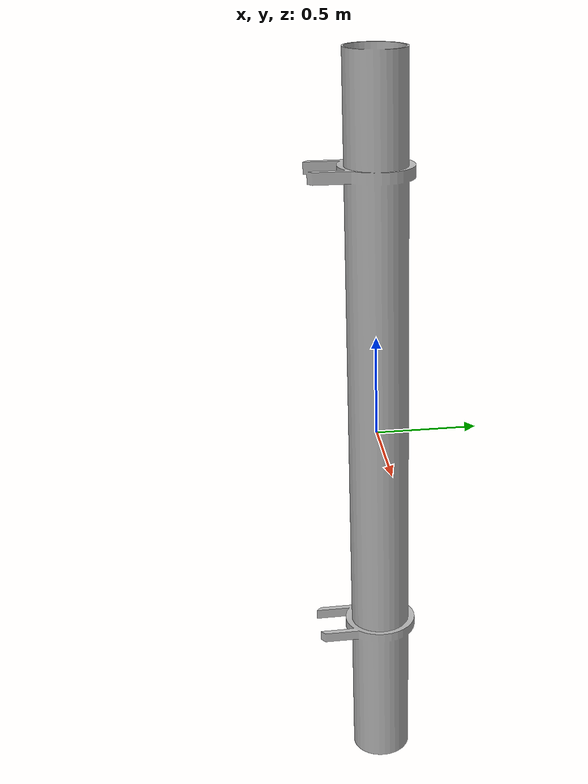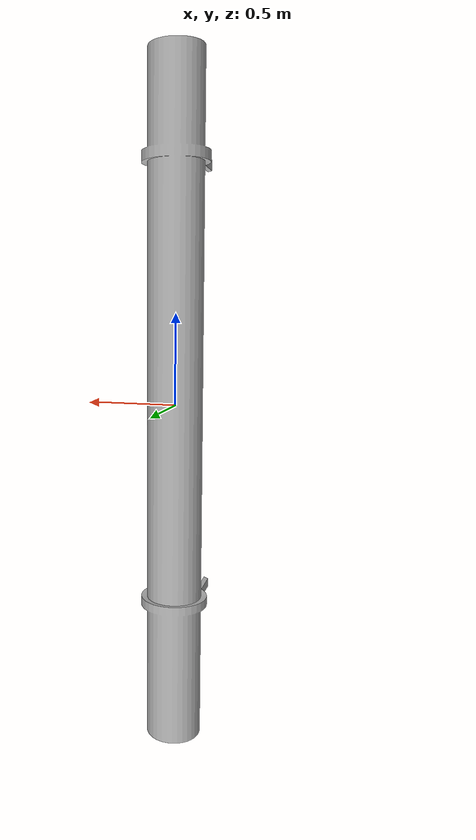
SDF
<?xml version="1.0" ?>
<sdf version="1.5">
<model name="rust_pipe">
  <static>false</static>
  <link name="rust_pipe_link">

  <inertial>
    <inertia>
      <ixx>1</ixx>
      <ixy>0</ixy>
      <ixz>0</ixz>
      <iyy>1</iyy>
      <iyz>0</iyz>
      <izz>1</izz>
    </inertia>
    <mass>20</mass>
  </inertial>

  <visual name="rust_pipe">
    <pose>0 0 0 0 0 0</pose>
    <geometry>
      <mesh><uri>model://rust_pipe/meshes/RustPipe.obj</uri><scale>1 1 1</scale></mesh>
    </geometry>
  </visual>

  <collision name="rust_pipe">
    <pose>0 0 0 0 0 0</pose>
    <geometry>
      <mesh><uri>model://rust_pipe/meshes/RustPipe.obj</uri><scale>1 1 1</scale></mesh>
    </geometry>
  </collision>

  </link>
</model>
</sdf>
